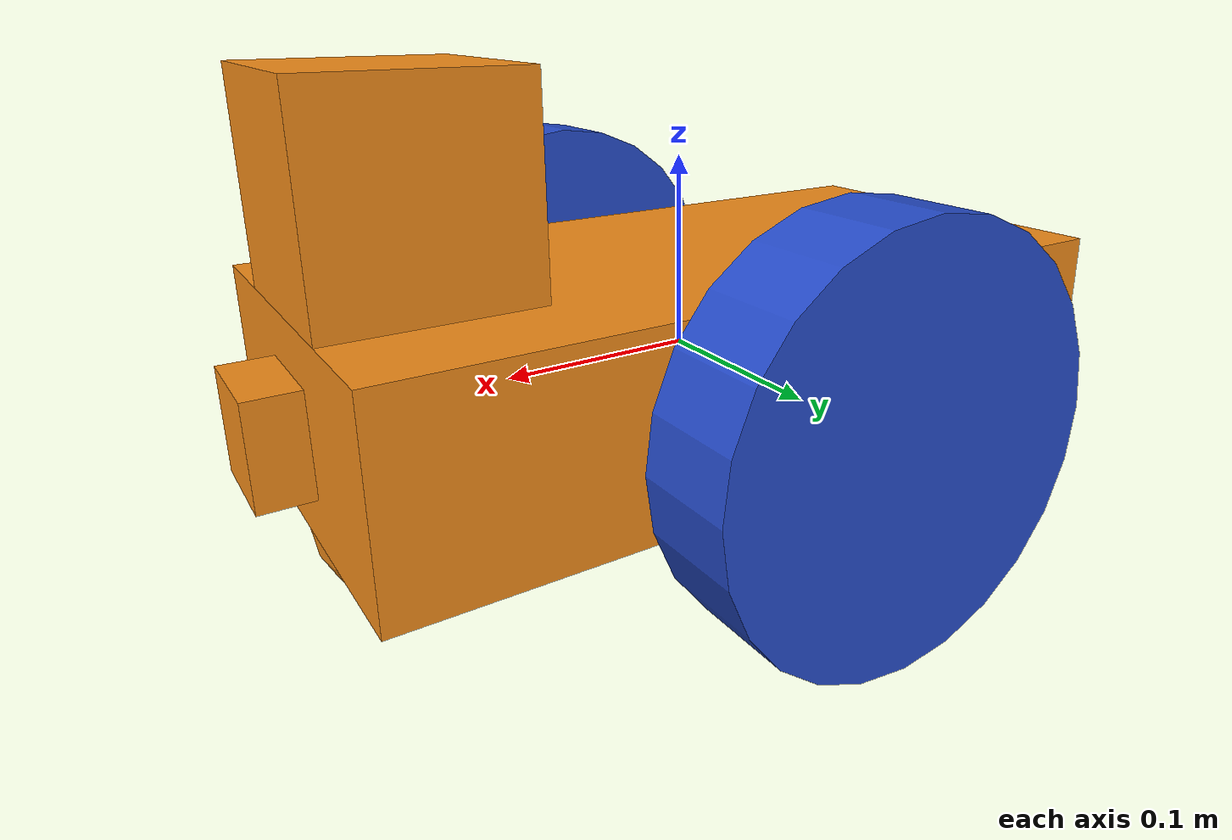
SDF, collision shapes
<?xml version="1.0" ?>
<sdf version='1.6'>
  <model name='myrobot'>
    <link name='chassis'>
      <pose frame=''>0 0 0 0 -0 0</pose>
      <inertial>
        <pose frame=''>0.001325 0 0.099338 0 -0 0</pose>
        <mass>15.1</mass>
        <inertia>
          <ixx>0.100995</ixx>
          <ixy>0</ixy>
          <ixz>0.00198675</ixz>
          <iyy>0.104969</iyy>
          <iyz>0</iyz>
          <izz>0.103976</izz>
        </inertia>
      </inertial>
      <collision name='chassis_fixed_joint_lump__collision_collision'>
        <pose frame=''>0 0 0 0 -0 0</pose>
        <geometry>
          <box>
            <size>0.4 0.2 0.1</size>
          </box>
        </geometry>
      </collision>
      <collision name='chassis_fixed_joint_lump__caster_collision_collision_1'>
        <pose frame=''>-0.15 0 -0.05 0 -0 0</pose>
        <geometry>
          <sphere>
            <radius>0.05</radius>
          </sphere>
        </geometry>
      </collision>
      <collision name='chassis_fixed_joint_lump__caster_front_collision_collision_2'>
        <pose frame=''>0.15 0 -0.05 0 -0 0</pose>
        <geometry>
          <sphere>
            <radius>0.05</radius>
          </sphere>
        </geometry>
      </collision>
      <collision name='chassis_fixed_joint_lump__camera_collision_3'>
        <pose frame=''>0.2 0 0 0 -0 0</pose>
        <geometry>
          <box>
            <size>0.05 0.05 0.05</size>
          </box>
        </geometry>
        <surface>
          <contact>
            <ode/>
          </contact>
          <friction>
            <ode/>
          </friction>
        </surface>
      </collision>
      <collision name='chassis_fixed_joint_lump__hokuyo_collision_4'>
        <pose frame=''>0.15 0 0.1 0 -0 0</pose>
        <geometry>
          <box>
            <size>0.1 0.1 0.1</size>
          </box>
        </geometry>
        <surface>
          <contact>
            <ode/>
          </contact>
          <friction>
            <ode/>
          </friction>
        </surface>
      </collision>
      <visual name='chassis_visual_visual'>
        <pose frame=''>0 0 0 0 -0 0</pose>
        <geometry>
          <box>
            <size>0.4 0.2 0.1</size>
          </box>
        </geometry>
        <material>
          <script>
            <name>Gazebo/Orange</name>
            <uri>file://media/materials/scripts/gazebo.material</uri>
          </script>
        </material>
      </visual>
      <visual name='chassis_fixed_joint_lump__caster_visual_visual_1'>
        <pose frame=''>-0.15 0 -0.05 0 -0 0</pose>
        <geometry>
          <sphere>
            <radius>0.05</radius>
          </sphere>
        </geometry>
      </visual>
      <visual name='chassis_fixed_joint_lump__caster_front_visual_visual_2'>
        <pose frame=''>0.15 0 -0.05 0 -0 0</pose>
        <geometry>
          <sphere>
            <radius>0.05</radius>
          </sphere>
        </geometry>
      </visual>
      <visual name='chassis_fixed_joint_lump__camera_visual_3'>
        <pose frame=''>0.2 0 0 0 -0 0</pose>
        <geometry>
          <box>
            <size>0.05 0.05 0.05</size>
          </box>
        </geometry>
        <material>
          <script>
            <name>Gazebo/Green</name>
            <uri>file://media/materials/scripts/gazebo.material</uri>
          </script>
        </material>
      </visual>
      <visual name='chassis_fixed_joint_lump__hokuyo_visual_4'>
        <pose frame=''>0.15 0 0.1 0 -0 0</pose>
        <geometry>
          <mesh>
            <scale>1 1 1</scale>
            <uri>model://mybot_description/meshes/hokuyo.dae</uri>
          </mesh>
        </geometry>
        <material>
          <script>
            <uri>__default__</uri>
            <name>__default__</name>
          </script>
        </material>
      </visual>
      <velocity_decay/>
      <sensor name='contact_sensor' type='contact'>
        <always_on>1</always_on>
        <update_rate>30</update_rate>
        <contact>
          <collision>collision</collision>
          <topic>__default_topic__</topic>
        </contact>
        <plugin name='collision_sensor' filename='libgazebo_ros_bumper.so'>
          <bumperTopicName>/mybot/body_collision</bumperTopicName>
          <frameName>body_collision</frameName>
        </plugin>
      </sensor>
      <velocity_decay/>
      <sensor name='camera1' type='camera'>
        <update_rate>30</update_rate>
        <camera name='head'>
          <horizontal_fov>1.39626</horizontal_fov>
          <image>
            <width>800</width>
            <height>800</height>
            <format>R8G8B8</format>
          </image>
          <clip>
            <near>0.02</near>
            <far>300</far>
          </clip>
        </camera>
        <plugin name='camera_controller' filename='libgazebo_ros_camera.so'>
          <alwaysOn>true</alwaysOn>
          <updateRate>0.0</updateRate>
          <cameraName>mybot/camera1</cameraName>
          <imageTopicName>image_raw</imageTopicName>
          <cameraInfoTopicName>camera_info</cameraInfoTopicName>
          <frameName>camera</frameName>
          <hackBaseline>0.07</hackBaseline>
          <distortionK1>0.0</distortionK1>
          <distortionK2>0.0</distortionK2>
          <distortionK3>0.0</distortionK3>
          <distortionT1>0.0</distortionT1>
          <distortionT2>0.0</distortionT2>
        </plugin>
        <pose frame=''>0.2 0 0 0 -0 0</pose>
      </sensor>
      <gravity>1</gravity>
      <velocity_decay/>
      <sensor name='head_hokuyo_sensor' type='ray'>
        <visualize>1</visualize>
        <update_rate>40</update_rate>
        <ray>
          <scan>
            <horizontal>
              <samples>100</samples>
              <resolution>1</resolution>
              <min_angle>-0.523</min_angle>
              <max_angle>0.523</max_angle>
            </horizontal>
            <vertical>
              <samples>100</samples>
              <resolution>1</resolution>
              <min_angle>0</min_angle>
              <max_angle>0.523</max_angle>
            </vertical>
          </scan>
          <range>
            <min>0.1</min>
            <max>30</max>
            <resolution>0.01</resolution>
          </range>
          <noise>
            <type>gaussian</type>
            <mean>0</mean>
            <stddev>0.01</stddev>
          </noise>
        </ray>
        <plugin name='gazebo_ros_head_hokuyo_controller' filename='libgazebo_3d_laser_plugin.so'>
          <alwaysOn>true</alwaysOn>
          <hokuyoMinIntensity>100</hokuyoMinIntensity>
          <use_pointcloud2>true</use_pointcloud2>
          <topicName>/mybot/laser</topicName>
          <frameName>hokuyo</frameName>
          <gaussianNoise>0.01</gaussianNoise>
          <updateRate>30</updateRate>
        </plugin>
        <always_on>1</always_on>
        <pose frame=''>0.15 0 0.1 0 -0 0</pose>
      </sensor>
    </link>
    <link name='left_wheel'>
      <pose frame=''>0 0.15 0 0 -0 0</pose>
      <inertial>
        <pose frame=''>0 0 0 0 1.5707 1.5707</pose>
        <mass>5</mass>
        <inertia>
          <ixx>0.1</ixx>
          <ixy>0</ixy>
          <ixz>0</ixz>
          <iyy>0.1</iyy>
          <iyz>0</iyz>
          <izz>0.1</izz>
        </inertia>
      </inertial>
      <collision name='left_wheel_fixed_joint_lump__collision_collision'>
        <pose frame=''>0 0 0 0 1.5707 1.5707</pose>
        <geometry>
          <cylinder>
            <length>0.05</length>
            <radius>0.1</radius>
          </cylinder>
        </geometry>
      </collision>
      <visual name='left_wheel_visual_visual'>
        <pose frame=''>0 0 0 0 1.5707 1.5707</pose>
        <geometry>
          <cylinder>
            <length>0.05</length>
            <radius>0.1</radius>
          </cylinder>
        </geometry>
        <material>
          <script>
            <name>Gazebo/Blue</name>
            <uri>file://media/materials/scripts/gazebo.material</uri>
          </script>
        </material>
      </visual>
      <gravity>1</gravity>
      <velocity_decay/>
      <sensor name='Lcontact_sensor' type='contact'>
        <always_on>1</always_on>
        <update_rate>30</update_rate>
        <contact>
          <collision>collision</collision>
          <topic>__default_topic__</topic>
        </contact>
        <plugin name='Lcollision_sensor' filename='libgazebo_ros_bumper.so'>
          <bumperTopicName>/mybot/left_collision</bumperTopicName>
          <frameName>leftWheel_collision</frameName>
        </plugin>
      </sensor>
    </link>
    <joint name='left_wheel_hinge' type='revolute'>
      <child>left_wheel</child>
      <parent>chassis</parent>
      <axis>
        <xyz>0 1 0</xyz>
        <limit>
          <lower>-1e+16</lower>
          <upper>1e+16</upper>
        </limit>
        <dynamics>
          <spring_reference>0</spring_reference>
          <spring_stiffness>0</spring_stiffness>
        </dynamics>
        <use_parent_model_frame>1</use_parent_model_frame>
      </axis>
    </joint>
    <link name='right_wheel'>
      <pose frame=''>0 -0.15 0 0 -0 0</pose>
      <inertial>
        <pose frame=''>0 0 0 0 1.5707 1.5707</pose>
        <mass>5</mass>
        <inertia>
          <ixx>0.1</ixx>
          <ixy>0</ixy>
          <ixz>0</ixz>
          <iyy>0.1</iyy>
          <iyz>0</iyz>
          <izz>0.1</izz>
        </inertia>
      </inertial>
      <collision name='right_wheel_fixed_joint_lump__collision_collision'>
        <pose frame=''>0 0 0 0 1.5707 1.5707</pose>
        <geometry>
          <cylinder>
            <length>0.05</length>
            <radius>0.1</radius>
          </cylinder>
        </geometry>
      </collision>
      <visual name='right_wheel_visual_visual'>
        <pose frame=''>0 0 0 0 1.5707 1.5707</pose>
        <geometry>
          <cylinder>
            <length>0.05</length>
            <radius>0.1</radius>
          </cylinder>
        </geometry>
        <material>
          <script>
            <name>Gazebo/Blue</name>
            <uri>file://media/materials/scripts/gazebo.material</uri>
          </script>
        </material>
      </visual>
      <gravity>1</gravity>
      <velocity_decay/>
    </link>
    <joint name='right_wheel_hinge' type='revolute'>
      <child>right_wheel</child>
      <parent>chassis</parent>
      <axis>
        <xyz>0 1 0</xyz>
        <limit>
          <lower>-1e+16</lower>
          <upper>1e+16</upper>
        </limit>
        <dynamics>
          <spring_reference>0</spring_reference>
          <spring_stiffness>0</spring_stiffness>
        </dynamics>
        <use_parent_model_frame>1</use_parent_model_frame>
      </axis>
    </joint>
    <static>0</static>
    <plugin name='differential_drive_controller' filename='libgazebo_ros_diff_drive.so'>
      <legacyMode>false</legacyMode>
      <alwaysOn>true</alwaysOn>
      <updateRate>10</updateRate>
      <leftJoint>left_wheel_hinge</leftJoint>
      <rightJoint>right_wheel_hinge</rightJoint>
      <wheelSeparation>0.4</wheelSeparation>
      <wheelDiameter>0.2</wheelDiameter>
      <torque>10</torque>
      <commandTopic>cmd_vel</commandTopic>
      <odometryTopic>odom</odometryTopic>
      <odometryFrame>odom</odometryFrame>
      <robotBaseFrame>chassis</robotBaseFrame>
    </plugin>
  </model>
</sdf>
